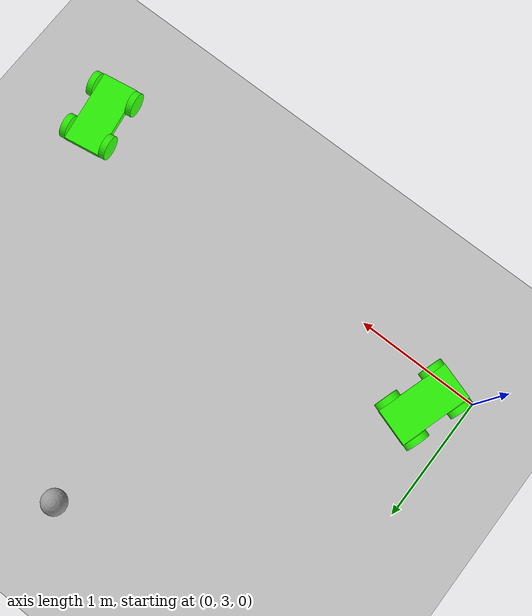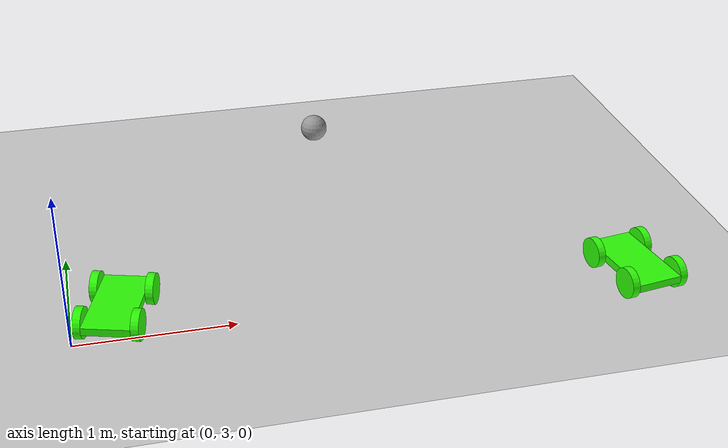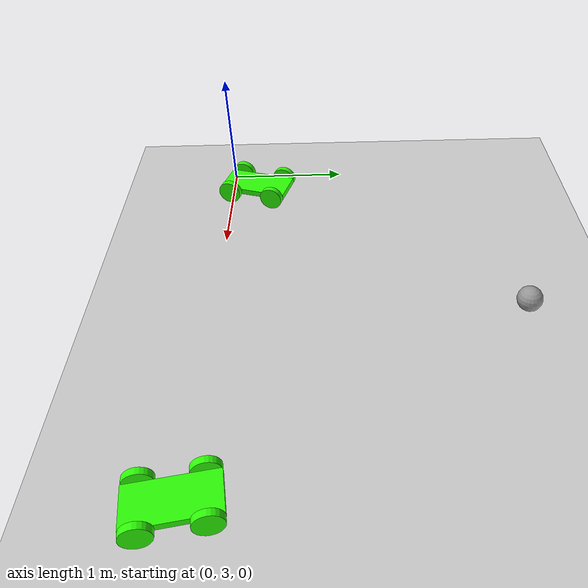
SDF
<sdf version="1.6">
 <world name="default">
  <model name="ground_plane">
   <static>1</static>
   <link name="link">
    <collision name="collision">
     <geometry><plane><normal>0 0 1</normal><size>100 100</size></plane></geometry>
     <surface>
      <contact><collide_bitmask>65535</collide_bitmask></contact>
      <friction><ode><mu>100</mu><mu2>50</mu2></ode></friction>
     </surface>
    </collision>
    <visual name="visual">
     <cast_shadows>0</cast_shadows>
     <geometry><plane><normal>0 0 1</normal><size>100 100</size></plane></geometry>
     <material>
      <script><uri>file://media/materials/scripts/gazebo.material</uri><name>Gazebo/Grey</name></script>
     </material>
    </visual>
   </link>
  </model>
  <model name="car">
   <link name="link_2">
    <inertial>
     <mass>1</mass>
     <inertia>
      <ixx>0.166667</ixx>
      <ixy>0</ixy>
      <ixz>0</ixz>
      <iyy>0.166667</iyy>
      <iyz>0</iyz>
      <izz>0.166667</izz>
     </inertia>
    </inertial>
    <pose>-0 -2e-06 -0 0 -0 0</pose>
    <visual name="visual">
     <geometry><box><size>0.3 0.6 0.05</size></box></geometry>
     <material>
      <lighting>1</lighting>
      <script><uri>file://media/materials/scripts/gazebo.material</uri><name>Gazebo/Grey</name></script>
      <shader type="pixel"><normal_map>__default__</normal_map></shader>
      <ambient>0.179 1 0.024 1</ambient>
      <diffuse>0.7 0.7 0.7 1</diffuse>
      <specular>0.01 0.01 0.01 1</specular>
      <emissive>0 0 0 1</emissive>
     </material>
    </visual>
    <collision name="collision">
     <geometry><box><size>0.3 0.6 0.05</size></box></geometry>
     <surface>
      <friction>
       <ode><mu>1</mu><mu2>1</mu2><fdir1>0 0 0</fdir1><slip1>0</slip1><slip2>0</slip2></ode>
       <torsional>
        <coefficient>1</coefficient>
        <patch_radius>0</patch_radius>
        <surface_radius>0</surface_radius>
        <use_patch_radius>1</use_patch_radius>
        <ode><slip>0</slip></ode>
       </torsional>
      </friction>
      <bounce><restitution_coefficient>0</restitution_coefficient><threshold>1e+06</threshold></bounce>
      <contact>
       <collide_without_contact>0</collide_without_contact>
       <collide_without_contact_bitmask>1</collide_without_contact_bitmask>
       <collide_bitmask>1</collide_bitmask>
       <ode>
        <soft_cfm>0</soft_cfm>
        <soft_erp>0.2</soft_erp>
        <kp>1e+13</kp>
        <kd>1</kd>
        <max_vel>0.01</max_vel>
        <min_depth>0</min_depth>
       </ode>
       <bullet>
        <split_impulse>1</split_impulse>
        <split_impulse_penetration_threshold>-0.01</split_impulse_penetration_threshold>
        <soft_cfm>0</soft_cfm>
        <soft_erp>0.2</soft_erp>
        <kp>1e+13</kp>
        <kd>1</kd>
       </bullet>
      </contact>
     </surface>
    </collision>
   </link>
   <link name="link_3">
    <inertial>
     <mass>1</mass>
     <inertia><ixx>0.145833</ixx><ixy>0</ixy><ixz>0</ixz><iyy>0.145833</iyy><iyz>0</iyz><izz>0.125</izz></inertia>
    </inertial>
    <pose>0.175023 -0.199988 0 1.5707 0 1.5707</pose>
    <visual name="visual">
     <geometry><cylinder><radius>0.1</radius><length>0.05</length></cylinder></geometry>
     <material>
      <lighting>1</lighting>
      <script><uri>file://media/materials/scripts/gazebo.material</uri><name>Gazebo/Grey</name></script>
      <shader type="pixel"><normal_map>__default__</normal_map></shader>
      <ambient>0.179 1 0.024 1</ambient>
      <diffuse>0.7 0.7 0.7 1</diffuse>
      <specular>0.01 0.01 0.01 1</specular>
      <emissive>0 0 0 1</emissive>
     </material>
    </visual>
    <collision name="collision">
     <geometry><cylinder><radius>0.1</radius><length>0.05</length></cylinder></geometry>
     <surface>
      <friction>
       <ode><mu>1</mu><mu2>1</mu2><fdir1>0 0 0</fdir1><slip1>0</slip1><slip2>0</slip2></ode>
       <torsional>
        <coefficient>1</coefficient>
        <patch_radius>0</patch_radius>
        <surface_radius>0</surface_radius>
        <use_patch_radius>1</use_patch_radius>
        <ode><slip>0</slip></ode>
       </torsional>
      </friction>
      <bounce><restitution_coefficient>0</restitution_coefficient><threshold>1e+06</threshold></bounce>
      <contact>
       <collide_without_contact>0</collide_without_contact>
       <collide_without_contact_bitmask>1</collide_without_contact_bitmask>
       <collide_bitmask>1</collide_bitmask>
       <ode>
        <soft_cfm>0</soft_cfm>
        <soft_erp>0.2</soft_erp>
        <kp>1e+13</kp>
        <kd>1</kd>
        <max_vel>0.01</max_vel>
        <min_depth>0</min_depth>
       </ode>
       <bullet>
        <split_impulse>1</split_impulse>
        <split_impulse_penetration_threshold>-0.01</split_impulse_penetration_threshold>
        <soft_cfm>0</soft_cfm>
        <soft_erp>0.2</soft_erp>
        <kp>1e+13</kp>
        <kd>1</kd>
       </bullet>
      </contact>
     </surface>
    </collision>
   </link>
   <link name="link_3_clone">
    <inertial>
     <mass>1</mass>
     <inertia><ixx>0.145833</ixx><ixy>0</ixy><ixz>0</ixz><iyy>0.145833</iyy><iyz>0</iyz><izz>0.125</izz></inertia>
    </inertial>
    <pose>0.17502 0.199998 0 1.5707 0 1.5707</pose>
    <visual name="visual">
     <geometry><cylinder><radius>0.1</radius><length>0.05</length></cylinder></geometry>
     <material>
      <lighting>1</lighting>
      <script><uri>file://media/materials/scripts/gazebo.material</uri><name>Gazebo/Grey</name></script>
      <shader type="pixel"><normal_map>__default__</normal_map></shader>
      <ambient>0.179 1 0.024 1</ambient>
      <diffuse>0.7 0.7 0.7 1</diffuse>
      <specular>0.01 0.01 0.01 1</specular>
      <emissive>0 0 0 1</emissive>
     </material>
    </visual>
    <collision name="collision">
     <geometry><cylinder><radius>0.1</radius><length>0.05</length></cylinder></geometry>
     <surface>
      <friction>
       <ode><mu>1</mu><mu2>1</mu2><fdir1>0 0 0</fdir1><slip1>0</slip1><slip2>0</slip2></ode>
       <torsional>
        <coefficient>1</coefficient>
        <patch_radius>0</patch_radius>
        <surface_radius>0</surface_radius>
        <use_patch_radius>1</use_patch_radius>
        <ode><slip>0</slip></ode>
       </torsional>
      </friction>
      <bounce><restitution_coefficient>0</restitution_coefficient><threshold>1e+06</threshold></bounce>
      <contact>
       <collide_without_contact>0</collide_without_contact>
       <collide_without_contact_bitmask>1</collide_without_contact_bitmask>
       <collide_bitmask>1</collide_bitmask>
       <ode>
        <soft_cfm>0</soft_cfm>
        <soft_erp>0.2</soft_erp>
        <kp>1e+13</kp>
        <kd>1</kd>
        <max_vel>0.01</max_vel>
        <min_depth>0</min_depth>
       </ode>
       <bullet>
        <split_impulse>1</split_impulse>
        <split_impulse_penetration_threshold>-0.01</split_impulse_penetration_threshold>
        <soft_cfm>0</soft_cfm>
        <soft_erp>0.2</soft_erp>
        <kp>1e+13</kp>
        <kd>1</kd>
       </bullet>
      </contact>
     </surface>
    </collision>
   </link>
   <link name="link_3_clone_0">
    <inertial>
     <mass>1</mass>
     <inertia><ixx>0.145833</ixx><ixy>0</ixy><ixz>0</ixz><iyy>0.145833</iyy><iyz>0</iyz><izz>0.125</izz></inertia>
    </inertial>
    <pose>-0.175019 -0.199999 -0 1.5707 0 1.5707</pose>
    <visual name="visual">
     <geometry><cylinder><radius>0.1</radius><length>0.05</length></cylinder></geometry>
     <material>
      <lighting>1</lighting>
      <script><uri>file://media/materials/scripts/gazebo.material</uri><name>Gazebo/Grey</name></script>
      <shader type="pixel"><normal_map>__default__</normal_map></shader>
      <ambient>0.179 1 0.024 1</ambient>
      <diffuse>0.7 0.7 0.7 1</diffuse>
      <specular>0.01 0.01 0.01 1</specular>
      <emissive>0 0 0 1</emissive>
     </material>
    </visual>
    <collision name="collision">
     <geometry><cylinder><radius>0.1</radius><length>0.05</length></cylinder></geometry>
     <surface>
      <friction>
       <ode><mu>1</mu><mu2>1</mu2><fdir1>0 0 0</fdir1><slip1>0</slip1><slip2>0</slip2></ode>
       <torsional>
        <coefficient>1</coefficient>
        <patch_radius>0</patch_radius>
        <surface_radius>0</surface_radius>
        <use_patch_radius>1</use_patch_radius>
        <ode><slip>0</slip></ode>
       </torsional>
      </friction>
      <bounce><restitution_coefficient>0</restitution_coefficient><threshold>1e+06</threshold></bounce>
      <contact>
       <collide_without_contact>0</collide_without_contact>
       <collide_without_contact_bitmask>1</collide_without_contact_bitmask>
       <collide_bitmask>1</collide_bitmask>
       <ode>
        <soft_cfm>0</soft_cfm>
        <soft_erp>0.2</soft_erp>
        <kp>1e+13</kp>
        <kd>1</kd>
        <max_vel>0.01</max_vel>
        <min_depth>0</min_depth>
       </ode>
       <bullet>
        <split_impulse>1</split_impulse>
        <split_impulse_penetration_threshold>-0.01</split_impulse_penetration_threshold>
        <soft_cfm>0</soft_cfm>
        <soft_erp>0.2</soft_erp>
        <kp>1e+13</kp>
        <kd>1</kd>
       </bullet>
      </contact>
     </surface>
    </collision>
   </link>
   <link name="link_3_clone_clone">
    <inertial>
     <mass>1</mass>
     <inertia><ixx>0.145833</ixx><ixy>0</ixy><ixz>0</ixz><iyy>0.145833</iyy><iyz>0</iyz><izz>0.125</izz></inertia>
    </inertial>
    <pose>-0.17502 0.199996 -0 1.5707 0 1.5707</pose>
    <visual name="visual">
     <geometry><cylinder><radius>0.1</radius><length>0.05</length></cylinder></geometry>
     <material>
      <lighting>1</lighting>
      <script><uri>file://media/materials/scripts/gazebo.material</uri><name>Gazebo/Grey</name></script>
      <shader type="pixel"><normal_map>__default__</normal_map></shader>
      <ambient>0.179 1 0.024 1</ambient>
      <diffuse>0.7 0.7 0.7 1</diffuse>
      <specular>0.01 0.01 0.01 1</specular>
      <emissive>0 0 0 1</emissive>
     </material>
    </visual>
    <collision name="collision">
     <geometry><cylinder><radius>0.1</radius><length>0.05</length></cylinder></geometry>
     <surface>
      <friction>
       <ode><mu>1</mu><mu2>1</mu2><fdir1>0 0 0</fdir1><slip1>0</slip1><slip2>0</slip2></ode>
       <torsional>
        <coefficient>1</coefficient>
        <patch_radius>0</patch_radius>
        <surface_radius>0</surface_radius>
        <use_patch_radius>1</use_patch_radius>
        <ode><slip>0</slip></ode>
       </torsional>
      </friction>
      <bounce><restitution_coefficient>0</restitution_coefficient><threshold>1e+06</threshold></bounce>
      <contact>
       <collide_without_contact>0</collide_without_contact>
       <collide_without_contact_bitmask>1</collide_without_contact_bitmask>
       <collide_bitmask>1</collide_bitmask>
       <ode>
        <soft_cfm>0</soft_cfm>
        <soft_erp>0.2</soft_erp>
        <kp>1e+13</kp>
        <kd>1</kd>
        <max_vel>0.01</max_vel>
        <min_depth>0</min_depth>
       </ode>
       <bullet>
        <split_impulse>1</split_impulse>
        <split_impulse_penetration_threshold>-0.01</split_impulse_penetration_threshold>
        <soft_cfm>0</soft_cfm>
        <soft_erp>0.2</soft_erp>
        <kp>1e+13</kp>
        <kd>1</kd>
       </bullet>
      </contact>
     </surface>
    </collision>
   </link>
   <joint name="link_2_JOINT_1" type="revolute">
    <parent>link_2</parent>
    <child>link_3_clone</child>
    <axis>
     <xyz>0 0 1</xyz>
     <use_parent_model_frame>0</use_parent_model_frame>
     <limit>
      <lower>-1.79769e+308</lower>
      <upper>1.79769e+308</upper>
      <effort>-1</effort>
      <velocity>-1</velocity>
     </limit>
     <dynamics>
      <spring_reference>0</spring_reference>
      <spring_stiffness>0</spring_stiffness>
      <damping>0</damping>
      <friction>0</friction>
     </dynamics>
    </axis>
    <physics>
     <ode><limit><cfm>0</cfm><erp>0.2</erp></limit><suspension><cfm>0</cfm><erp>0.2</erp></suspension></ode>
    </physics>
   </joint>
   <joint name="link_2_JOINT_2" type="revolute">
    <parent>link_2</parent>
    <child>link_3_clone_clone</child>
    <axis>
     <xyz>1 0 0</xyz>
     <use_parent_model_frame>0</use_parent_model_frame>
     <limit>
      <lower>-1.79769e+308</lower>
      <upper>1.79769e+308</upper>
      <effort>-1</effort>
      <velocity>-1</velocity>
     </limit>
     <dynamics>
      <spring_reference>0</spring_reference>
      <spring_stiffness>0</spring_stiffness>
      <damping>0</damping>
      <friction>0</friction>
     </dynamics>
    </axis>
    <physics>
     <ode><limit><cfm>0</cfm><erp>0.2</erp></limit><suspension><cfm>0</cfm><erp>0.2</erp></suspension></ode>
    </physics>
   </joint>
   <joint name="link_2_JOINT_4" type="revolute">
    <parent>link_2</parent>
    <child>link_3</child>
    <axis>
     <xyz>0 0 1</xyz>
     <use_parent_model_frame>0</use_parent_model_frame>
     <limit>
      <lower>-1.79769e+308</lower>
      <upper>1.79769e+308</upper>
      <effort>-1</effort>
      <velocity>-1</velocity>
     </limit>
     <dynamics>
      <spring_reference>0</spring_reference>
      <spring_stiffness>0</spring_stiffness>
      <damping>0</damping>
      <friction>0</friction>
     </dynamics>
    </axis>
    <physics>
     <ode><limit><cfm>0</cfm><erp>0.2</erp></limit><suspension><cfm>0</cfm><erp>0.2</erp></suspension></ode>
    </physics>
   </joint>
   <joint name="link_2_JOINT_5" type="revolute">
    <parent>link_2</parent>
    <child>link_3_clone_0</child>
    <axis>
     <xyz>0 0 1</xyz>
     <use_parent_model_frame>0</use_parent_model_frame>
     <limit>
      <lower>-1.79769e+308</lower>
      <upper>1.79769e+308</upper>
      <effort>-1</effort>
      <velocity>-1</velocity>
     </limit>
     <dynamics>
      <spring_reference>0</spring_reference>
      <spring_stiffness>0</spring_stiffness>
      <damping>0</damping>
      <friction>0</friction>
     </dynamics>
    </axis>
    <physics>
     <ode><limit><cfm>0</cfm><erp>0.2</erp></limit><suspension><cfm>0</cfm><erp>0.2</erp></suspension></ode>
    </physics>
   </joint>
   <static>0</static>
   <pose>3.57704 2.95569 0.100003 -6e-06 -7e-06 0.156203</pose>
  </model>
  <model name="car_clone">
   <link name="link_2">
    <inertial>
     <mass>1</mass>
     <inertia>
      <ixx>0.166667</ixx>
      <ixy>0</ixy>
      <ixz>0</ixz>
      <iyy>0.166667</iyy>
      <iyz>0</iyz>
      <izz>0.166667</izz>
     </inertia>
    </inertial>
    <pose>-0 -2e-06 -0 0 -0 0</pose>
    <visual name="visual">
     <geometry><box><size>0.3 0.6 0.05</size></box></geometry>
     <material>
      <lighting>1</lighting>
      <script><uri>file://media/materials/scripts/gazebo.material</uri><name>Gazebo/Grey</name></script>
      <shader type="pixel"><normal_map>__default__</normal_map></shader>
      <ambient>0.179 1 0.024 1</ambient>
      <diffuse>0.7 0.7 0.7 1</diffuse>
      <specular>0.01 0.01 0.01 1</specular>
      <emissive>0 0 0 1</emissive>
     </material>
    </visual>
    <collision name="collision">
     <geometry><box><size>0.3 0.6 0.05</size></box></geometry>
     <surface>
      <friction>
       <ode><mu>1</mu><mu2>1</mu2><fdir1>0 0 0</fdir1><slip1>0</slip1><slip2>0</slip2></ode>
       <torsional>
        <coefficient>1</coefficient>
        <patch_radius>0</patch_radius>
        <surface_radius>0</surface_radius>
        <use_patch_radius>1</use_patch_radius>
        <ode><slip>0</slip></ode>
       </torsional>
      </friction>
      <bounce><restitution_coefficient>0</restitution_coefficient><threshold>1e+06</threshold></bounce>
      <contact>
       <collide_without_contact>0</collide_without_contact>
       <collide_without_contact_bitmask>1</collide_without_contact_bitmask>
       <collide_bitmask>1</collide_bitmask>
       <ode>
        <soft_cfm>0</soft_cfm>
        <soft_erp>0.2</soft_erp>
        <kp>1e+13</kp>
        <kd>1</kd>
        <max_vel>0.01</max_vel>
        <min_depth>0</min_depth>
       </ode>
       <bullet>
        <split_impulse>1</split_impulse>
        <split_impulse_penetration_threshold>-0.01</split_impulse_penetration_threshold>
        <soft_cfm>0</soft_cfm>
        <soft_erp>0.2</soft_erp>
        <kp>1e+13</kp>
        <kd>1</kd>
       </bullet>
      </contact>
     </surface>
    </collision>
   </link>
   <link name="link_3">
    <inertial>
     <mass>1</mass>
     <inertia><ixx>0.145833</ixx><ixy>0</ixy><ixz>0</ixz><iyy>0.145833</iyy><iyz>0</iyz><izz>0.125</izz></inertia>
    </inertial>
    <pose>0.175023 -0.199988 0 1.5707 0 1.5707</pose>
    <visual name="visual">
     <geometry><cylinder><radius>0.1</radius><length>0.05</length></cylinder></geometry>
     <material>
      <lighting>1</lighting>
      <script><uri>file://media/materials/scripts/gazebo.material</uri><name>Gazebo/Grey</name></script>
      <shader type="pixel"><normal_map>__default__</normal_map></shader>
      <ambient>0.179 1 0.024 1</ambient>
      <diffuse>0.7 0.7 0.7 1</diffuse>
      <specular>0.01 0.01 0.01 1</specular>
      <emissive>0 0 0 1</emissive>
     </material>
    </visual>
    <collision name="collision">
     <geometry><cylinder><radius>0.1</radius><length>0.05</length></cylinder></geometry>
     <surface>
      <friction>
       <ode><mu>1</mu><mu2>1</mu2><fdir1>0 0 0</fdir1><slip1>0</slip1><slip2>0</slip2></ode>
       <torsional>
        <coefficient>1</coefficient>
        <patch_radius>0</patch_radius>
        <surface_radius>0</surface_radius>
        <use_patch_radius>1</use_patch_radius>
        <ode><slip>0</slip></ode>
       </torsional>
      </friction>
      <bounce><restitution_coefficient>0</restitution_coefficient><threshold>1e+06</threshold></bounce>
      <contact>
       <collide_without_contact>0</collide_without_contact>
       <collide_without_contact_bitmask>1</collide_without_contact_bitmask>
       <collide_bitmask>1</collide_bitmask>
       <ode>
        <soft_cfm>0</soft_cfm>
        <soft_erp>0.2</soft_erp>
        <kp>1e+13</kp>
        <kd>1</kd>
        <max_vel>0.01</max_vel>
        <min_depth>0</min_depth>
       </ode>
       <bullet>
        <split_impulse>1</split_impulse>
        <split_impulse_penetration_threshold>-0.01</split_impulse_penetration_threshold>
        <soft_cfm>0</soft_cfm>
        <soft_erp>0.2</soft_erp>
        <kp>1e+13</kp>
        <kd>1</kd>
       </bullet>
      </contact>
     </surface>
    </collision>
   </link>
   <link name="link_3_clone">
    <inertial>
     <mass>1</mass>
     <inertia><ixx>0.145833</ixx><ixy>0</ixy><ixz>0</ixz><iyy>0.145833</iyy><iyz>0</iyz><izz>0.125</izz></inertia>
    </inertial>
    <pose>0.17502 0.199998 0 1.5707 0 1.5707</pose>
    <visual name="visual">
     <geometry><cylinder><radius>0.1</radius><length>0.05</length></cylinder></geometry>
     <material>
      <lighting>1</lighting>
      <script><uri>file://media/materials/scripts/gazebo.material</uri><name>Gazebo/Grey</name></script>
      <shader type="pixel"><normal_map>__default__</normal_map></shader>
      <ambient>0.179 1 0.024 1</ambient>
      <diffuse>0.7 0.7 0.7 1</diffuse>
      <specular>0.01 0.01 0.01 1</specular>
      <emissive>0 0 0 1</emissive>
     </material>
    </visual>
    <collision name="collision">
     <geometry><cylinder><radius>0.1</radius><length>0.05</length></cylinder></geometry>
     <surface>
      <friction>
       <ode><mu>1</mu><mu2>1</mu2><fdir1>0 0 0</fdir1><slip1>0</slip1><slip2>0</slip2></ode>
       <torsional>
        <coefficient>1</coefficient>
        <patch_radius>0</patch_radius>
        <surface_radius>0</surface_radius>
        <use_patch_radius>1</use_patch_radius>
        <ode><slip>0</slip></ode>
       </torsional>
      </friction>
      <bounce><restitution_coefficient>0</restitution_coefficient><threshold>1e+06</threshold></bounce>
      <contact>
       <collide_without_contact>0</collide_without_contact>
       <collide_without_contact_bitmask>1</collide_without_contact_bitmask>
       <collide_bitmask>1</collide_bitmask>
       <ode>
        <soft_cfm>0</soft_cfm>
        <soft_erp>0.2</soft_erp>
        <kp>1e+13</kp>
        <kd>1</kd>
        <max_vel>0.01</max_vel>
        <min_depth>0</min_depth>
       </ode>
       <bullet>
        <split_impulse>1</split_impulse>
        <split_impulse_penetration_threshold>-0.01</split_impulse_penetration_threshold>
        <soft_cfm>0</soft_cfm>
        <soft_erp>0.2</soft_erp>
        <kp>1e+13</kp>
        <kd>1</kd>
       </bullet>
      </contact>
     </surface>
    </collision>
   </link>
   <link name="link_3_clone_0">
    <inertial>
     <mass>1</mass>
     <inertia><ixx>0.145833</ixx><ixy>0</ixy><ixz>0</ixz><iyy>0.145833</iyy><iyz>0</iyz><izz>0.125</izz></inertia>
    </inertial>
    <pose>-0.175019 -0.199999 -0 1.5707 0 1.5707</pose>
    <visual name="visual">
     <geometry><cylinder><radius>0.1</radius><length>0.05</length></cylinder></geometry>
     <material>
      <lighting>1</lighting>
      <script><uri>file://media/materials/scripts/gazebo.material</uri><name>Gazebo/Grey</name></script>
      <shader type="pixel"><normal_map>__default__</normal_map></shader>
      <ambient>0.179 1 0.024 1</ambient>
      <diffuse>0.7 0.7 0.7 1</diffuse>
      <specular>0.01 0.01 0.01 1</specular>
      <emissive>0 0 0 1</emissive>
     </material>
    </visual>
    <collision name="collision">
     <geometry><cylinder><radius>0.1</radius><length>0.05</length></cylinder></geometry>
     <surface>
      <friction>
       <ode><mu>1</mu><mu2>1</mu2><fdir1>0 0 0</fdir1><slip1>0</slip1><slip2>0</slip2></ode>
       <torsional>
        <coefficient>1</coefficient>
        <patch_radius>0</patch_radius>
        <surface_radius>0</surface_radius>
        <use_patch_radius>1</use_patch_radius>
        <ode><slip>0</slip></ode>
       </torsional>
      </friction>
      <bounce><restitution_coefficient>0</restitution_coefficient><threshold>1e+06</threshold></bounce>
      <contact>
       <collide_without_contact>0</collide_without_contact>
       <collide_without_contact_bitmask>1</collide_without_contact_bitmask>
       <collide_bitmask>1</collide_bitmask>
       <ode>
        <soft_cfm>0</soft_cfm>
        <soft_erp>0.2</soft_erp>
        <kp>1e+13</kp>
        <kd>1</kd>
        <max_vel>0.01</max_vel>
        <min_depth>0</min_depth>
       </ode>
       <bullet>
        <split_impulse>1</split_impulse>
        <split_impulse_penetration_threshold>-0.01</split_impulse_penetration_threshold>
        <soft_cfm>0</soft_cfm>
        <soft_erp>0.2</soft_erp>
        <kp>1e+13</kp>
        <kd>1</kd>
       </bullet>
      </contact>
     </surface>
    </collision>
   </link>
   <link name="link_3_clone_clone">
    <inertial>
     <mass>1</mass>
     <inertia><ixx>0.145833</ixx><ixy>0</ixy><ixz>0</ixz><iyy>0.145833</iyy><iyz>0</iyz><izz>0.125</izz></inertia>
    </inertial>
    <pose>-0.17502 0.199996 -0 1.5707 0 1.5707</pose>
    <visual name="visual">
     <geometry><cylinder><radius>0.1</radius><length>0.05</length></cylinder></geometry>
     <material>
      <lighting>1</lighting>
      <script><uri>file://media/materials/scripts/gazebo.material</uri><name>Gazebo/Grey</name></script>
      <shader type="pixel"><normal_map>__default__</normal_map></shader>
      <ambient>0.179 1 0.024 1</ambient>
      <diffuse>0.7 0.7 0.7 1</diffuse>
      <specular>0.01 0.01 0.01 1</specular>
      <emissive>0 0 0 1</emissive>
     </material>
    </visual>
    <collision name="collision">
     <geometry><cylinder><radius>0.1</radius><length>0.05</length></cylinder></geometry>
     <surface>
      <friction>
       <ode><mu>1</mu><mu2>1</mu2><fdir1>0 0 0</fdir1><slip1>0</slip1><slip2>0</slip2></ode>
       <torsional>
        <coefficient>1</coefficient>
        <patch_radius>0</patch_radius>
        <surface_radius>0</surface_radius>
        <use_patch_radius>1</use_patch_radius>
        <ode><slip>0</slip></ode>
       </torsional>
      </friction>
      <bounce><restitution_coefficient>0</restitution_coefficient><threshold>1e+06</threshold></bounce>
      <contact>
       <collide_without_contact>0</collide_without_contact>
       <collide_without_contact_bitmask>1</collide_without_contact_bitmask>
       <collide_bitmask>1</collide_bitmask>
       <ode>
        <soft_cfm>0</soft_cfm>
        <soft_erp>0.2</soft_erp>
        <kp>1e+13</kp>
        <kd>1</kd>
        <max_vel>0.01</max_vel>
        <min_depth>0</min_depth>
       </ode>
       <bullet>
        <split_impulse>1</split_impulse>
        <split_impulse_penetration_threshold>-0.01</split_impulse_penetration_threshold>
        <soft_cfm>0</soft_cfm>
        <soft_erp>0.2</soft_erp>
        <kp>1e+13</kp>
        <kd>1</kd>
       </bullet>
      </contact>
     </surface>
    </collision>
   </link>
   <joint name="link_2_JOINT_1" type="revolute">
    <parent>link_2</parent>
    <child>link_3_clone</child>
    <axis>
     <xyz>0 0 1</xyz>
     <use_parent_model_frame>0</use_parent_model_frame>
     <limit>
      <lower>-1.79769e+308</lower>
      <upper>1.79769e+308</upper>
      <effort>-1</effort>
      <velocity>-1</velocity>
     </limit>
     <dynamics>
      <spring_reference>0</spring_reference>
      <spring_stiffness>0</spring_stiffness>
      <damping>0</damping>
      <friction>0</friction>
     </dynamics>
    </axis>
    <physics>
     <ode><limit><cfm>0</cfm><erp>0.2</erp></limit><suspension><cfm>0</cfm><erp>0.2</erp></suspension></ode>
    </physics>
   </joint>
   <joint name="link_2_JOINT_2" type="revolute">
    <parent>link_2</parent>
    <child>link_3_clone_clone</child>
    <axis>
     <xyz>1 0 0</xyz>
     <use_parent_model_frame>0</use_parent_model_frame>
     <limit>
      <lower>-1.79769e+308</lower>
      <upper>1.79769e+308</upper>
      <effort>-1</effort>
      <velocity>-1</velocity>
     </limit>
     <dynamics>
      <spring_reference>0</spring_reference>
      <spring_stiffness>0</spring_stiffness>
      <damping>0</damping>
      <friction>0</friction>
     </dynamics>
    </axis>
    <physics>
     <ode><limit><cfm>0</cfm><erp>0.2</erp></limit><suspension><cfm>0</cfm><erp>0.2</erp></suspension></ode>
    </physics>
   </joint>
   <joint name="link_2_JOINT_4" type="revolute">
    <parent>link_2</parent>
    <child>link_3</child>
    <axis>
     <xyz>0 0 1</xyz>
     <use_parent_model_frame>0</use_parent_model_frame>
     <limit>
      <lower>-1.79769e+308</lower>
      <upper>1.79769e+308</upper>
      <effort>-1</effort>
      <velocity>-1</velocity>
     </limit>
     <dynamics>
      <spring_reference>0</spring_reference>
      <spring_stiffness>0</spring_stiffness>
      <damping>0</damping>
      <friction>0</friction>
     </dynamics>
    </axis>
    <physics>
     <ode><limit><cfm>0</cfm><erp>0.2</erp></limit><suspension><cfm>0</cfm><erp>0.2</erp></suspension></ode>
    </physics>
   </joint>
   <joint name="link_2_JOINT_5" type="revolute">
    <parent>link_2</parent>
    <child>link_3_clone_0</child>
    <axis>
     <xyz>0 0 1</xyz>
     <use_parent_model_frame>0</use_parent_model_frame>
     <limit>
      <lower>-1.79769e+308</lower>
      <upper>1.79769e+308</upper>
      <effort>-1</effort>
      <velocity>-1</velocity>
     </limit>
     <dynamics>
      <spring_reference>0</spring_reference>
      <spring_stiffness>0</spring_stiffness>
      <damping>0</damping>
      <friction>0</friction>
     </dynamics>
    </axis>
    <physics>
     <ode><limit><cfm>0</cfm><erp>0.2</erp></limit><suspension><cfm>0</cfm><erp>0.2</erp></suspension></ode>
    </physics>
   </joint>
   <static>0</static>
   <pose>0.293467 3.23228 0.100002 0 -2e-06 -0.304661</pose>
  </model>
  <model name="my_ball">
   <link name="link_0">
    <inertial>
     <mass>1</mass>
     <inertia><ixx>0.1</ixx><ixy>0</ixy><ixz>0</ixz><iyy>0.1</iyy><iyz>0</iyz><izz>0.1</izz></inertia>
    </inertial>
    <visual name="visual">
     <geometry><sphere><radius>0.1</radius></sphere></geometry>
     <material>
      <lighting>1</lighting>
      <script><uri>file://media/materials/scripts/gazebo.material</uri><name>Gazebo/Grey</name></script>
      <shader type="pixel"><normal_map>__default__</normal_map></shader>
      <ambient>1 1 1 1</ambient>
      <diffuse>1 1 1 1</diffuse>
      <specular>1 1 1 1</specular>
      <emissive>1 1 1 1</emissive>
     </material>
    </visual>
    <collision name="collision">
     <geometry><sphere><radius>0.1</radius></sphere></geometry>
     <surface>
      <friction>
       <ode><mu>1</mu><mu2>1</mu2><fdir1>0 0 0</fdir1><slip1>0</slip1><slip2>0</slip2></ode>
       <torsional>
        <coefficient>1</coefficient>
        <patch_radius>0</patch_radius>
        <surface_radius>0</surface_radius>
        <use_patch_radius>1</use_patch_radius>
        <ode><slip>0</slip></ode>
       </torsional>
      </friction>
      <bounce><restitution_coefficient>0</restitution_coefficient><threshold>1e+06</threshold></bounce>
      <contact>
       <collide_without_contact>0</collide_without_contact>
       <collide_without_contact_bitmask>1</collide_without_contact_bitmask>
       <collide_bitmask>1</collide_bitmask>
       <ode>
        <soft_cfm>0</soft_cfm>
        <soft_erp>0.2</soft_erp>
        <kp>1e+13</kp>
        <kd>1</kd>
        <max_vel>0.01</max_vel>
        <min_depth>0</min_depth>
       </ode>
       <bullet>
        <split_impulse>1</split_impulse>
        <split_impulse_penetration_threshold>-0.01</split_impulse_penetration_threshold>
        <soft_cfm>0</soft_cfm>
        <soft_erp>0.2</soft_erp>
        <kp>1e+13</kp>
        <kd>1</kd>
       </bullet>
      </contact>
     </surface>
    </collision>
   </link>
   <static>0</static>
   <pose>1.96958 5.41573 0.1 0 -0 0</pose>
  </model>
 </world>
</sdf>
